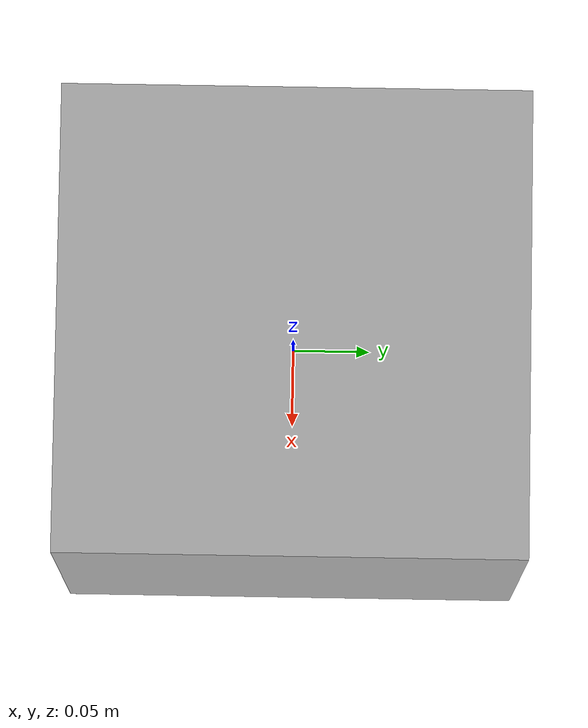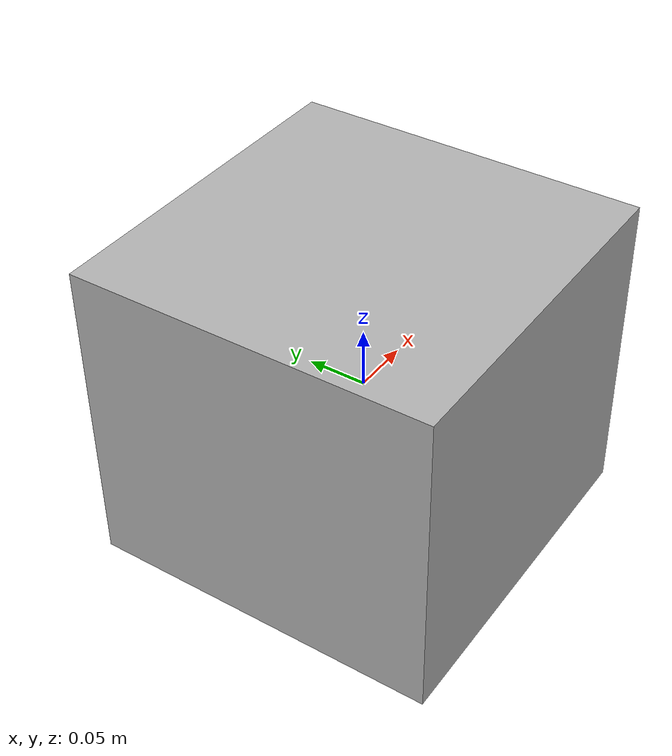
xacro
<?xml version="1.0" ?>
<robot name="box" xmlns:xacro="http://www.ros.org/wiki/xacro">

  <xacro:include filename="$(find box_description)/urdf/materials.xacro" />
  <xacro:include filename="$(find box_description)/urdf/box.trans" />
  <xacro:include filename="$(find box_description)/urdf/box.gazebo" />
  <link name="base_link">
    <inertial>
      <origin xyz="0.0 0.0 0.0" rpy="0 0 0"/>
      <mass value="5"/>
      <inertia ixx="0.0679" iyy="0.0679" izz="0.075" ixy="0.0" iyz="0.0" ixz="0.0"/>
    </inertial>
    <visual>
      <origin xyz="0 0 0" rpy="0 0 0"/>
      <geometry>
        <box size="0.3 0.3 0.27"/>
      </geometry>
      <material name="silver"/>
    </visual>
    <collision>
      <origin xyz="0 0 0" rpy="0 0 0"/>
      <geometry>
        <box size="0.3 0.3 0.27"/>
      </geometry>
    </collision>
  </link>

</robot>

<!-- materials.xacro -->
<robot name="box" xmlns:xacro="http://www.ros.org/wiki/xacro" >

<material name="silver">
  <color rgba="0.700 0.700 0.700 1.000"/>
</material>

</robot>

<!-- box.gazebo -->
<robot name="box" xmlns:xacro="http://www.ros.org/wiki/xacro" >

<xacro:property name="body_color" value="Gazebo/Orange" />

<gazebo reference="base_link">
  <material>${body_color}</material>
  <mu1>0.2</mu1>
  <mu2>0.2</mu2>
  <selfCollide>false</selfCollide>
  <gravity>true</gravity>
  <!-- 添加surface屬性來設置摩擦和彈性 -->
  <surface>
    <friction>
      <ode>
        <mu>0.8</mu>   <!-- 摩擦係數 -->
        <mu2>0.8</mu2> <!-- 第二摩擦係數 -->
      </ode>
    </friction>
    <bounce>
      <restitution>0.0</restitution>  <!-- 彈性，0表示無彈力 -->
    </bounce>
  </surface>
</gazebo>

</robot>
